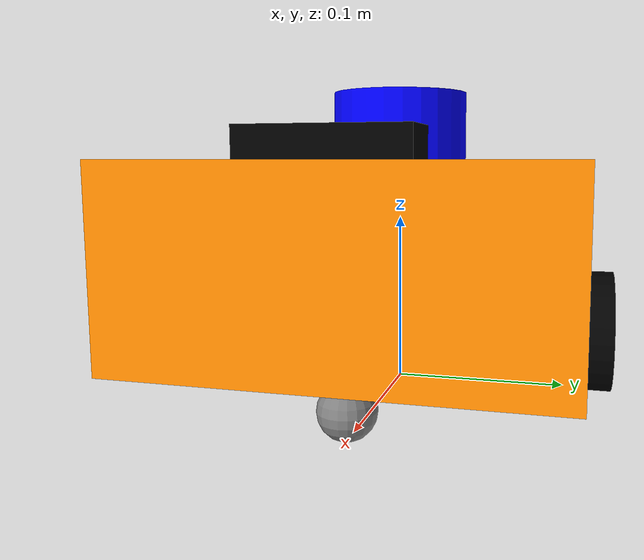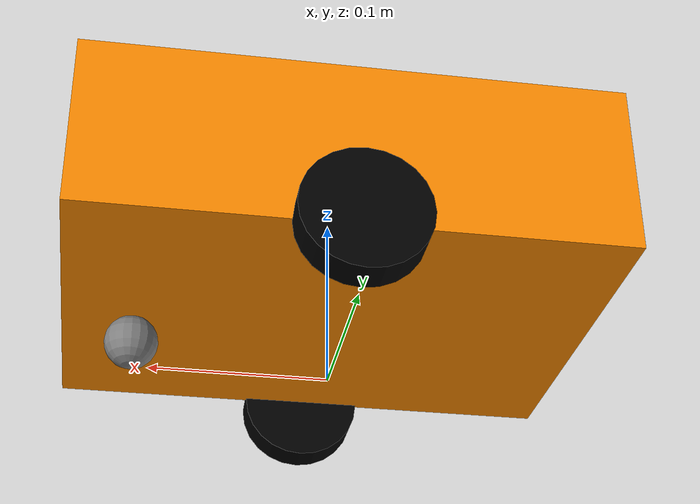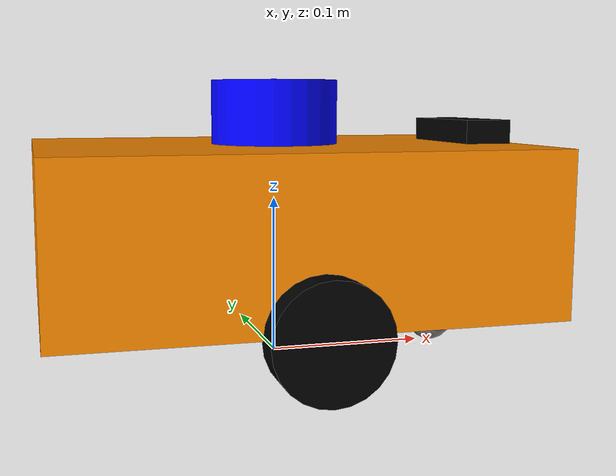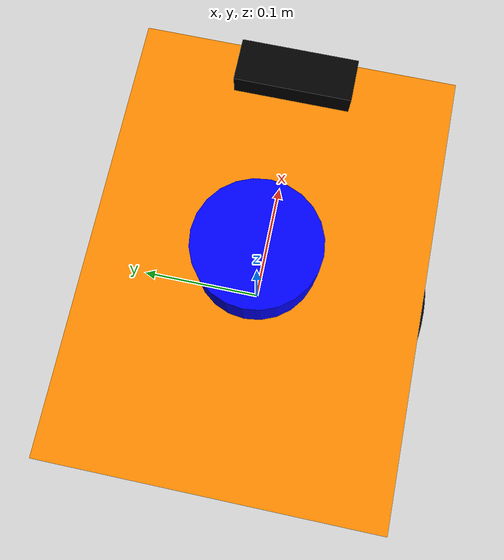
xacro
<?xml version="1.0"?>
<robot name="turtlebro" xmlns:xacro="http://www.ros.org/wiki/xacro">

  <!-- ============== ПАРАМЕТРЫ РОБОТА ============== -->
  <xacro:property name="base_length" value="0.30"/>
  <xacro:property name="base_width"  value="0.22"/>
  <xacro:property name="base_height" value="0.10"/>
  <xacro:property name="wheel_radius" value="0.035"/>
  <xacro:property name="wheel_width"  value="0.020"/>
  <xacro:property name="wheel_separation" value="0.235"/>
  <xacro:property name="caster_radius" value="0.015"/>
  <xacro:property name="base_mass" value="2.0"/>
  <xacro:property name="wheel_mass" value="0.1"/>

  <!-- ============== МАТЕРИАЛЫ ============== -->
  <material name="orange"><color rgba="1.0 0.55 0.0 1.0"/></material>
  <material name="black"><color rgba="0.0 0.0 0.0 1.0"/></material>
  <material name="grey"><color rgba="0.5 0.5 0.5 1.0"/></material>
  <material name="blue"><color rgba="0.0 0.0 1.0 1.0"/></material>

  <!-- ============== ИНЕРЦИАЛЬНЫЕ МАКРОСЫ ============== -->
  <xacro:macro name="box_inertia" params="m x y z">
    <inertial>
      <mass value="${m}"/>
      <inertia ixx="${m*(y*y+z*z)/12}" ixy="0" ixz="0"
               iyy="${m*(x*x+z*z)/12}" iyz="0"
               izz="${m*(x*x+y*y)/12}"/>
    </inertial>
  </xacro:macro>

  <xacro:macro name="cylinder_inertia" params="m r h">
    <inertial>
      <mass value="${m}"/>
      <inertia ixx="${m*(3*r*r+h*h)/12}" ixy="0" ixz="0"
               iyy="${m*(3*r*r+h*h)/12}" iyz="0"
               izz="${m*r*r/2}"/>
    </inertial>
  </xacro:macro>

  <!-- ============== БАЗОВОЕ ЗВЕНО ============== -->
  <link name="base_footprint"/>

  <link name="base_link">
    <visual>
      <origin xyz="0 0 ${base_height/2}" rpy="0 0 0"/>
      <geometry><box size="${base_length} ${base_width} ${base_height}"/></geometry>
      <material name="orange"/>
    </visual>
    <collision>
      <origin xyz="0 0 ${base_height/2}" rpy="0 0 0"/>
      <geometry><box size="${base_length} ${base_width} ${base_height}"/></geometry>
    </collision>
    <xacro:box_inertia m="${base_mass}" x="${base_length}" y="${base_width}" z="${base_height}"/>
  </link>

  <joint name="base_joint" type="fixed">
    <parent link="base_footprint"/>
    <child link="base_link"/>
    <origin xyz="0 0 ${wheel_radius}" rpy="0 0 0"/>
  </joint>

  <!-- ============== КОЛЁСА (макрос) ============== -->
  <xacro:macro name="wheel" params="prefix y_offset">
    <link name="${prefix}_wheel">
      <visual>
        <origin xyz="0 0 0" rpy="${pi/2} 0 0"/>
        <geometry><cylinder radius="${wheel_radius}" length="${wheel_width}"/></geometry>
        <material name="black"/>
      </visual>
      <collision>
        <origin xyz="0 0 0" rpy="${pi/2} 0 0"/>
        <geometry><cylinder radius="${wheel_radius}" length="${wheel_width}"/></geometry>
      </collision>
      <xacro:cylinder_inertia m="${wheel_mass}" r="${wheel_radius}" h="${wheel_width}"/>
    </link>

    <joint name="${prefix}_wheel_joint" type="continuous">
      <parent link="base_link"/>
      <child link="${prefix}_wheel"/>
      <origin xyz="0 ${y_offset} 0" rpy="0 0 0"/>
      <axis xyz="0 1 0"/>
      <dynamics damping="0.2" friction="0.1"/>
    </joint>
  </xacro:macro>

  <xacro:wheel prefix="left"  y_offset="${ wheel_separation/2}"/>
  <xacro:wheel prefix="right" y_offset="${-wheel_separation/2}"/>

  <!-- ============== ОПОРНЫЙ РОЛИК (caster) ============== -->
  <link name="caster_wheel">
    <visual>
      <geometry><sphere radius="${caster_radius}"/></geometry>
      <material name="grey"/>
    </visual>
    <collision>
      <geometry><sphere radius="${caster_radius}"/></geometry>
    </collision>
    <inertial>
      <mass value="0.05"/>
      <inertia ixx="1e-5" ixy="0" ixz="0" iyy="1e-5" iyz="0" izz="1e-5"/>
    </inertial>
  </link>

  <joint name="caster_joint" type="fixed">
    <parent link="base_link"/>
    <child link="caster_wheel"/>
    <origin xyz="${base_length/2 - 0.04} 0 ${-wheel_radius + caster_radius}" rpy="0 0 0"/>
  </joint>

  <!-- ============== ЛИДАР ============== -->
  <link name="laser_frame">
    <visual>
      <geometry><cylinder radius="0.04" length="0.04"/></geometry>
      <material name="blue"/>
    </visual>
    <collision><geometry><cylinder radius="0.04" length="0.04"/></geometry></collision>
    <xacro:cylinder_inertia m="0.1" r="0.04" h="0.04"/>
  </link>

  <joint name="laser_joint" type="fixed">
    <parent link="base_link"/>
    <child link="laser_frame"/>
    <origin xyz="0 0 ${base_height + 0.02}" rpy="0 0 0"/>
  </joint>

  <!-- ============== КАМЕРА RGB-D ============== -->
  <link name="camera_link">
    <visual>
      <geometry><box size="0.03 0.08 0.03"/></geometry>
      <material name="black"/>
    </visual>
    <collision><geometry><box size="0.03 0.08 0.03"/></geometry></collision>
    <xacro:box_inertia m="0.05" x="0.03" y="0.08" z="0.03"/>
  </link>

  <joint name="camera_joint" type="fixed">
    <parent link="base_link"/>
    <child link="camera_link"/>
    <origin xyz="${base_length/2 - 0.02} 0 ${base_height/2 + 0.05}" rpy="0 0 0"/>
  </joint>

  <link name="camera_optical_frame"/>
  <joint name="camera_optical_joint" type="fixed">
    <parent link="camera_link"/>
    <child link="camera_optical_frame"/>
    <origin xyz="0 0 0" rpy="${-pi/2} 0 ${-pi/2}"/>
  </joint>

  <!-- ============== IMU ============== -->
  <link name="imu_link">
    <visual><geometry><box size="0.02 0.02 0.005"/></geometry></visual>
    <inertial>
      <mass value="0.01"/>
      <inertia ixx="1e-6" ixy="0" ixz="0" iyy="1e-6" iyz="0" izz="1e-6"/>
    </inertial>
  </link>
  <joint name="imu_joint" type="fixed">
    <parent link="base_link"/>
    <child link="imu_link"/>
    <origin xyz="0 0 ${base_height/2}" rpy="0 0 0"/>
  </joint>

  <!-- ============== ПЛАГИНЫ GAZEBO (включаем отдельный файл) ============== -->
  <xacro:include filename="$(find turtlebro_description)/urdf/turtlebro.gazebo.xacro"/>

</robot>
